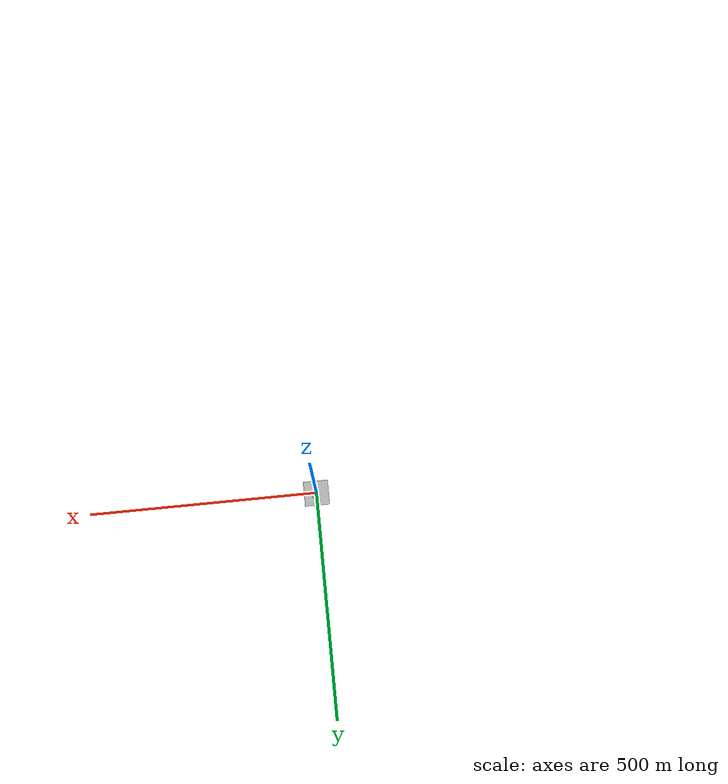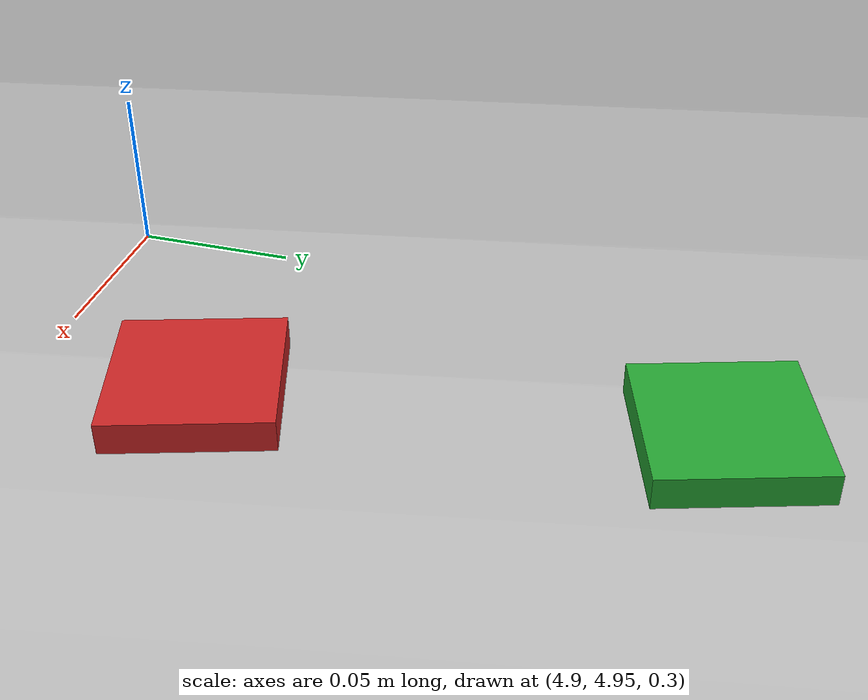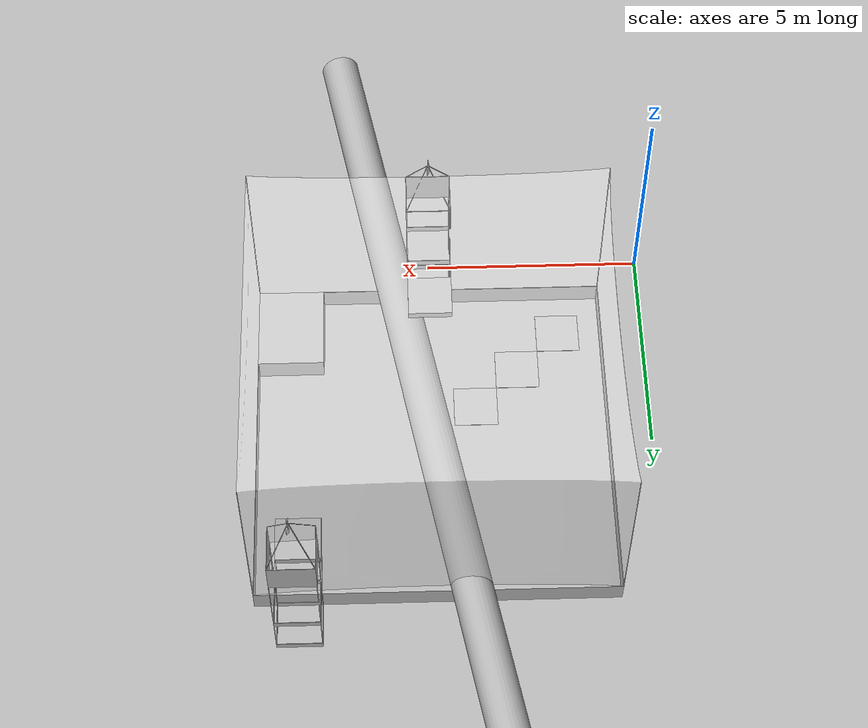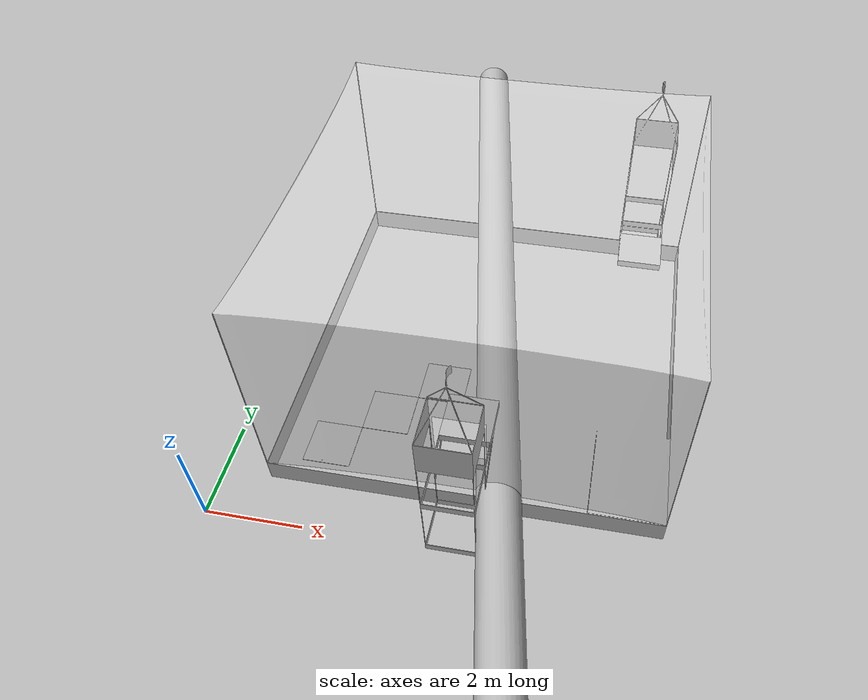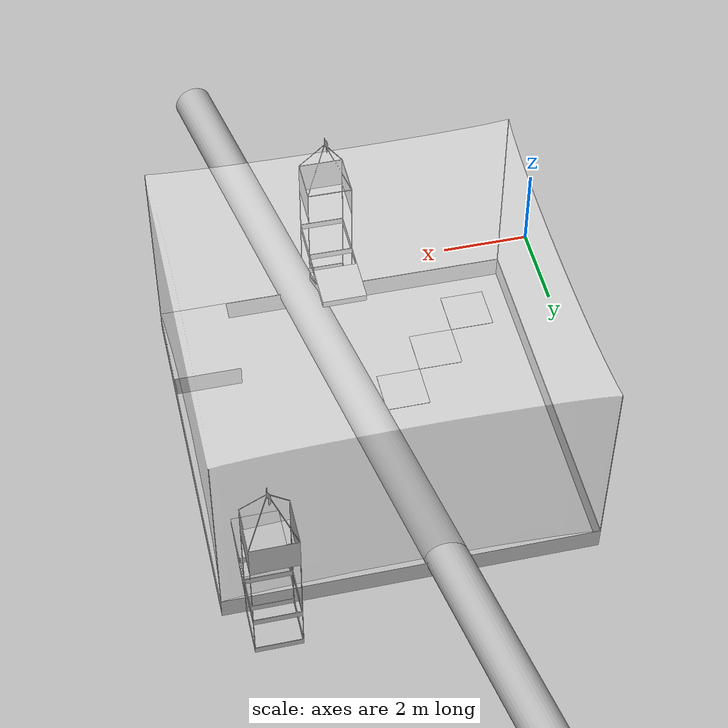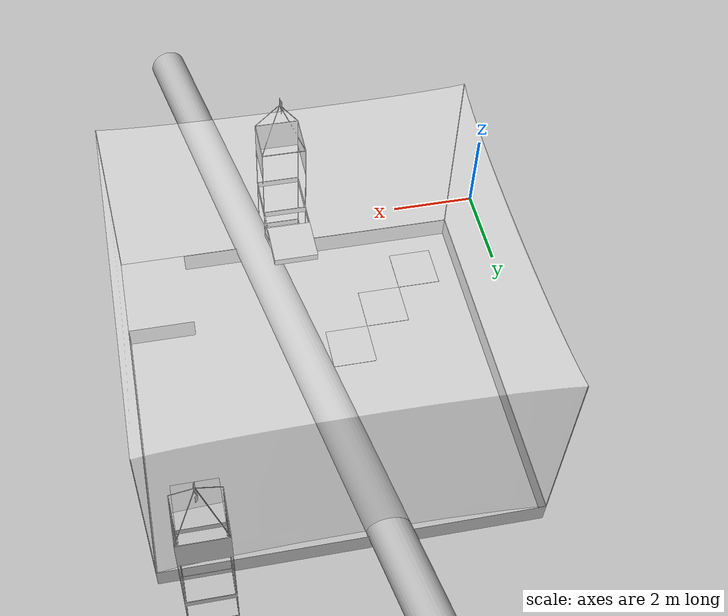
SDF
<?xml version="1.0" ?>
<?xml-model href="http://sdformat.org/schemas/root.xsd" schematypens="http://www.w3.org/2001/XMLSchema"?>
<sdf version="1.5">
  <world name="default">
    <plugin name="mrs_gazebo_static_transform_republisher_plugin" filename="libMRSGazeboStaticTransformRepublisher.so"/>

    <!-- coordinate system {-->
    <spherical_coordinates>
      <surface_model>EARTH_WGS84</surface_model>
      <latitude_deg>37.411802</latitude_deg>
      <longitude_deg>-121.995739</longitude_deg>
      <elevation>0.0</elevation>
      <heading_deg>0</heading_deg>
    </spherical_coordinates>

    <!-- physics engine {-->
    <physics name="default_physics" default="0" type="ode">
      <gravity>0 0 -9.8066</gravity>
      <ode>
        <solver>
          <type>quick</type>
          <iters>10</iters>
          <sor>1.3</sor>
          <use_dynamic_moi_rescaling>0</use_dynamic_moi_rescaling>
        </solver>
        <constraints>z
          <cfm>0</cfm>
          <erp>0.2</erp>
          <contact_max_correcting_vel>1000</contact_max_correcting_vel>
          <contact_surface_layer>0.001</contact_surface_layer>
        </constraints>
      </ode>
      <max_step_size>0.004</max_step_size>
      <real_time_factor>1</real_time_factor>
      <real_time_update_rate>250</real_time_update_rate>
      <magnetic_field>6.0e-06 2.3e-05 -4.2e-05</magnetic_field>
    </physics>

    <!-- turn off shadows {-->
    <scene>
      <shadows>false</shadows>
      <sky>
        <clouds/>
      </sky>
    </scene>

    <!-- sun {-->
    <light type="directional" name="sun">
      <cast_shadows>true</cast_shadows>
      <pose>250 250 600 0 0 0</pose>
      <diffuse>0.8 0.8 0.8 1</diffuse>
      <specular>0.2 0.2 0.2 1</specular>
      <attenuation>
        <range>1000</range>
        <constant>0.9</constant>
        <linear>0.01</linear>
        <quadratic>0.001</quadratic>
      </attenuation>
      <direction>0 0 -1</direction>
    </light>

    <!-- ground plane {-->
    <model name="ground_plane">
      <static>true</static>
      <link name="link">
        <collision name="collision">
          <pose>0 0 0 0 0 0</pose>
          <geometry>
            <plane>
              <normal>0 0 1</normal>
              <size>250 250</size>
            </plane>
          </geometry>
          <surface>
            <friction>
              <ode>
                <mu>1</mu>
                <mu2>1</mu2>
              </ode>
            </friction>
          </surface>
        </collision>
        <visual name="grass">
          <pose>0 0 0 0 0 0</pose>
          <cast_shadows>false</cast_shadows>
          <geometry>
            <mesh>
              <uri>file://grass_plane/meshes/grass_plane.dae</uri>
            </mesh>
          </geometry>
        </visual>
      </link>
    </model>

    <!-- THE ARENA MODEL -->
      <include>
        <uri>model://arena_spawn</uri>
        <!-- Pose ( x y z r p y ) -->
        <pose frame=''>1 1 0.0005 0 -0 0</pose>
      </include>

    <!-- THE LAND BASE MODEL 1 -->
    <model name="land_base_1">
      <include>
        <uri>model://land_base</uri>
        <!-- Pose ( x y z r p y ) -->
        <pose frame=''>2 2 0.012 0 -0 0</pose>
      </include>
    </model>

    <!-- THE LAND BASE MODEL 2 -->
    <model name="land_base_2">
        <include>
          <uri>model://land_base</uri>
            <!-- Pose ( x y z r p y ) -->
          <pose frame=''>3 3 0.012 0 -0 0</pose>
        </include>
    </model>

      <!-- THE LAND BASE MODEL 3 -->
    <model name="land_base_3">
      <include>
        <uri>model://land_base</uri>
          <!-- Pose ( x y z r p y ) -->
        <pose frame=''>4 4 0.012 0 -0 0</pose>
      </include>
    </model>

    <!-- THE PIPE MODEL -->
    <model name="pipe">
      <include>
        <uri>model://pipe</uri>
          <!-- Pose ( x y z r p y ) -->
        <pose frame=''>5 5 0.0005 0 -0 0</pose>
      </include>
    </model>

<!-- REMEMBER!!! IN THE CHALLENGE WIIL BE JUST 5 OF ALL SENSORS -->
    <!-- THE SENSOR GREEN 1 MODEL -->
    <model name="sensor_green_1">
      <include>
        <uri>model://sensor_green</uri>
          <!-- Pose ( x y z r p y ) -->
        <pose frame=''>4.95 5.15 0.3 0 -0 0</pose>
      </include>
    </model>

    <!-- THE SENSOR GREEN 2 MODEL -->
    <model name="sensor_green_2">
      <include>
        <uri>model://sensor_green</uri>
          <!-- Pose ( x y z r p y ) -->
        <pose frame=''>5.1 4.4 0.3 0 -0 0</pose>
      </include>
    </model>

    <!-- THE SENSOR GREEN 3 MODEL -->
    <model name="sensor_green_3">
      <include>
        <uri>model://sensor_green</uri>
          <!-- Pose ( x y z r p y ) -->
        <pose frame=''>5.15 4.15 0.3 0 -0 0</pose>
      </include>
    </model>

    <!-- THE SENSOR GREEN 4 MODEL -->
    <model name="sensor_green_4">
      <include>
        <uri>model://sensor_green</uri>
          <!-- Pose ( x y z r p y ) -->
        <pose frame=''>5.17 3.90 0.3 0 -0 0</pose>
      </include>
    </model>

    <!-- THE SENSOR GREEN 5 MODEL -->
    <model name="sensor_green_5">
      <include>
        <uri>model://sensor_green</uri>
          <!-- Pose ( x y z r p y ) -->
        <pose frame=''>5.0 4.6 0.3 0 -0 0</pose>
      </include>
    </model>

    <!-- THE SENSOR RED 1 MODEL -->
    <model name="sensor_red_1">
      <include>
        <uri>model://sensor_red</uri>
          <!-- Pose ( x y z r p y ) -->
        <pose frame=''>5.32 3.26 0.3 0 -0 0</pose>
      </include>
    </model>

    <!-- THE SENSOR RED 2 MODEL -->
    <model name="sensor_red_2">
      <include>
        <uri>model://sensor_red</uri>
          <!-- Pose ( x y z r p y ) -->
        <pose frame=''>4.97 5 0.3 0 -0 0</pose>
      </include>
    </model>

    <!-- THE SENSOR RED 3 MODEL -->
    <model name="sensor_red_3">
      <include>
        <uri>model://sensor_red</uri>
          <!-- Pose ( x y z r p y ) -->
        <pose frame=''>4.9 5 45.3 0 -0 0</pose>
      </include>
    </model>

    <!-- THE SENSOR RED 4 MODEL -->
    <model name="sensor_red_4">
      <include>
        <uri>model://sensor_red</uri>
          <!-- Pose ( x y z r p y ) -->
        <pose frame=''>4.8 6 0.3 0 -0 0</pose>
      </include>
    </model>

    <!-- THE SENSOR RED 5 MODEL -->
    <model name="sensor_red_5">
      <include>
        <uri>model://sensor_red</uri>
          <!-- Pose ( x y z r p y ) -->
        <pose frame=''>4.6 7.15 0.3 0 -0 0</pose>
      </include>
    </model>

    <!-- THE VOID (for spawning objects out of camera view) {-->
    <model name='the_void'>
      <static>1</static>
      <link name='link'>
        <pose frame=''>0 0 0.1 0 -0 0</pose>
        <visual name='the_void'>
          <pose frame=''>0 0 2 0 -0 0</pose>
          <geometry>
            <sphere>
              <radius>0.25</radius>
            </sphere>
          </geometry>
          <material>
            <script>
              <uri>file://media/materials/scripts/Gazebo.material</uri>
              <name>Gazebo/Black</name>
            </script>
          </material>
        </visual>
        <self_collide>0</self_collide>
        <enable_wind>0</enable_wind>
        <kinematic>0</kinematic>
      </link>
      <pose frame=''>-1000 -1000 0 0 0 0</pose>
    </model>

    <!-- user camera {-->
    <gui>
      <camera name="camera">
        <pose>-60 -100 30 0 0.4 0.89</pose>
      </camera>
    </gui>

    <!-- GUI frame synchronization {-->
    <plugin name="mrs_gazebo_rviz_cam_synchronizer" filename="libMRSGazeboRvizCameraSynchronizer.so" >
      <target_frame_id>gazebo_user_camera</target_frame_id>
      <world_origin_frame_id>uav1/gps_origin</world_origin_frame_id>
      <frame_to_follow>uav1::base_link</frame_to_follow>
    </plugin>

  </world>
</sdf>

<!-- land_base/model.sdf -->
<sdf version='1.6'>
  <model name='land_base'>
    <link name='link_E'>
      <inertial>
        <mass>1</mass>
        <inertia>
          <ixx>0.166667</ixx>
          <ixy>0</ixy>
          <ixz>0</ixz>
          <iyy>0.166667</iyy>
          <iyz>0</iyz>
          <izz>0.166667</izz>
        </inertia>
      </inertial>
      <pose frame=''>0 0 0 0 -0 0</pose>
      <visual name='visual'>
        <pose frame=''>0 0 0 0 -0 0</pose>
        <geometry>
          <mesh>
            <uri>model://land_base/meshes/land_base_1.obj</uri>
            <scale>1 1 1</scale>
          </mesh>
        </geometry>
        <transparency>0</transparency>
        <cast_shadows>1</cast_shadows>
      </visual>
      <collision name='collision'>
        <laser_retro>0</laser_retro>
        <max_contacts>100</max_contacts>
        <pose frame=''>0 0 0 0 -0 0</pose>
        <geometry>
          <mesh>
            <uri>model://land_base/meshes/land_base_1.obj</uri>
            <scale>1 1 1</scale>
          </mesh>
        </geometry>
        <surface>
          <friction>
            <ode>
              <mu>100</mu>
              <mu2>100</mu2>
              <fdir1>0 0 0</fdir1>
              <slip1>0</slip1>
              <slip2>0</slip2>
            </ode>
            <torsional>
              <coefficient>1</coefficient>
              <patch_radius>1</patch_radius>
              <surface_radius>1</surface_radius>
              <use_patch_radius>1</use_patch_radius>
              <ode>
                <slip>0</slip>
              </ode>
            </torsional>
          </friction>
          <bounce>
            <restitution_coefficient>1</restitution_coefficient>
            <threshold>1e+06</threshold>
          </bounce>
          <contact>
            <collide_without_contact>0</collide_without_contact>
            <collide_without_contact_bitmask>1</collide_without_contact_bitmask>
            <collide_bitmask>1</collide_bitmask>
            <ode>
              <soft_cfm>0</soft_cfm>
              <soft_erp>0.2</soft_erp>
              <kp>1e+13</kp>
              <kd>1</kd>
              <max_vel>0.01</max_vel>
              <min_depth>0</min_depth>
            </ode>
            <bullet>
              <split_impulse>1</split_impulse>
              <split_impulse_penetration_threshold>-0.01</split_impulse_penetration_threshold>
              <soft_cfm>0</soft_cfm>
              <soft_erp>0.2</soft_erp>
              <kp>1e+13</kp>
              <kd>1</kd>
            </bullet>
          </contact>
        </surface>
      </collision>
    </link>
    <static>1</static>
    <allow_auto_disable>1</allow_auto_disable>
  </model>
</sdf>

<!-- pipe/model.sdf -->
<sdf version='1.6'>
  <model name='pipe'>
    <link name='link_0'>
      <inertial>
        <mass>1</mass>
        <inertia>
          <ixx>0.166667</ixx>
          <ixy>0</ixy>
          <ixz>0</ixz>
          <iyy>0.166667</iyy>
          <iyz>0</iyz>
          <izz>0.166667</izz>
        </inertia>
      </inertial>
      <pose frame=''>0 0 0 0 -0 0</pose>
      <visual name='visual'>
        <pose frame=''>0 0 0 0 -0 0</pose>
        <geometry>
          <mesh>
            <uri>model://competition/pipe/meshes/pipe.obj</uri>
            <scale>3 3 3</scale>
          </mesh>
        </geometry>
        <transparency>0</transparency>
        <cast_shadows>1</cast_shadows>
      </visual>
      <collision name='collision'>
        <laser_retro>0</laser_retro>
        <max_contacts>10</max_contacts>
        <pose frame=''>0 0 0 0 -0 0</pose>
        <geometry>
          <mesh>
            <uri>model://competition/pipe/meshes/pipe.obj</uri>
            <scale>3 3 3</scale>
          </mesh>
        </geometry>
        <surface>
          <friction>
            <ode>
              <mu>1</mu>
              <mu2>1</mu2>
              <fdir1>0 0 0</fdir1>
              <slip1>0</slip1>
              <slip2>0</slip2>
            </ode>
            <torsional>
              <coefficient>1</coefficient>
              <patch_radius>0</patch_radius>
              <surface_radius>0</surface_radius>
              <use_patch_radius>1</use_patch_radius>
              <ode>
                <slip>0</slip>
              </ode>
            </torsional>
          </friction>
          <bounce>
            <restitution_coefficient>0</restitution_coefficient>
            <threshold>1e+06</threshold>
          </bounce>
          <contact>
            <collide_without_contact>0</collide_without_contact>
            <collide_without_contact_bitmask>1</collide_without_contact_bitmask>
            <collide_bitmask>1</collide_bitmask>
            <ode>
              <soft_cfm>0</soft_cfm>
              <soft_erp>0.2</soft_erp>
              <kp>1e+13</kp>
              <kd>1</kd>
              <max_vel>0.01</max_vel>
              <min_depth>0</min_depth>
            </ode>
            <bullet>
              <split_impulse>1</split_impulse>
              <split_impulse_penetration_threshold>-0.01</split_impulse_penetration_threshold>
              <soft_cfm>0</soft_cfm>
              <soft_erp>0.2</soft_erp>
              <kp>1e+13</kp>
              <kd>1</kd>
            </bullet>
          </contact>
        </surface>
      </collision>
    </link>
    <static>1</static>
    <allow_auto_disable>1</allow_auto_disable>
  </model>
</sdf>

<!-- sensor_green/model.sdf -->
<sdf version='1.6'>
  <model name='sensor_green'>
    <link name='link_4'>
      <inertial>
        <mass>1</mass>
        <inertia>
          <ixx>0.166667</ixx>
          <ixy>0</ixy>
          <ixz>0</ixz>
          <iyy>0.166667</iyy>
          <iyz>0</iyz>
          <izz>0.166667</izz>
        </inertia>
      </inertial>
      <pose frame=''>0 0 0 0 -0 0</pose>
      <visual name='visual'>
        <pose frame=''>0 0 0 0 -0 0</pose>
        <geometry>
          <mesh>
            <uri>model://sensor_green/meshes/sensor_green.obj</uri>
            <scale>1 1 1</scale>
          </mesh>
        </geometry>
        <material>
          <lighting>1</lighting>
          <script>
            <uri>file://media/materials/scripts/gazebo.material</uri>
            <name>Gazebo/Green</name>
          </script>
          <shader type='pixel'/>
        </material>
        <transparency>0</transparency>
        <cast_shadows>1</cast_shadows>
      </visual>
      <collision name='collision'>
        <laser_retro>0</laser_retro>
        <max_contacts>10</max_contacts>
        <pose frame=''>0 0 0 0 -0 0</pose>
        <geometry>
          <mesh>
            <uri>model://sensor_green/meshes/sensor_green.obj</uri>
            <scale>1 1 1</scale>
          </mesh>
        </geometry>
        <surface>
          <friction>
            <ode>
              <mu>1</mu>
              <mu2>1</mu2>
              <fdir1>0 0 0</fdir1>
              <slip1>0</slip1>
              <slip2>0</slip2>
            </ode>
            <torsional>
              <coefficient>1</coefficient>
              <patch_radius>0</patch_radius>
              <surface_radius>0</surface_radius>
              <use_patch_radius>1</use_patch_radius>
              <ode>
                <slip>0</slip>
              </ode>
            </torsional>
          </friction>
          <bounce>
            <restitution_coefficient>0</restitution_coefficient>
            <threshold>1e+06</threshold>
          </bounce>
          <contact>
            <collide_without_contact>0</collide_without_contact>
            <collide_without_contact_bitmask>1</collide_without_contact_bitmask>
            <collide_bitmask>1</collide_bitmask>
            <ode>
              <soft_cfm>0</soft_cfm>
              <soft_erp>0.2</soft_erp>
              <kp>1e+13</kp>
              <kd>1</kd>
              <max_vel>0.01</max_vel>
              <min_depth>0</min_depth>
            </ode>
            <bullet>
              <split_impulse>1</split_impulse>
              <split_impulse_penetration_threshold>-0.01</split_impulse_penetration_threshold>
              <soft_cfm>0</soft_cfm>
              <soft_erp>0.2</soft_erp>
              <kp>1e+13</kp>
              <kd>1</kd>
            </bullet>
          </contact>
        </surface>
      </collision>
    </link>
    <static>1</static>
    <allow_auto_disable>1</allow_auto_disable>
  </model>
</sdf>

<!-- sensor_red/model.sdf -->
<sdf version='1.6'>
  <model name='sensor_red'>
    <link name='link_5'>
      <inertial>
        <mass>1</mass>
        <inertia>
          <ixx>0.166667</ixx>
          <ixy>0</ixy>
          <ixz>0</ixz>
          <iyy>0.166667</iyy>
          <iyz>0</iyz>
          <izz>0.166667</izz>
        </inertia>
      </inertial>
      <pose frame=''>0 0 0 0 -0 0</pose>
      <visual name='visual'>
        <pose frame=''>0 0 0 0 -0 0</pose>
        <geometry>
          <mesh>
            <uri>model://sensor_red/meshes/sensor_red.obj</uri>
            <scale>1 1 1</scale>
          </mesh>
        </geometry>
        <material>
          <lighting>1</lighting>
          <script>
            <uri>file://media/materials/scripts/gazebo.material</uri>
            <name>Gazebo/Red</name>
          </script>
          <shader type='pixel'/>
        </material>
        <transparency>0</transparency>
        <cast_shadows>1</cast_shadows>
      </visual>
      <collision name='collision'>
        <laser_retro>0</laser_retro>
        <max_contacts>10</max_contacts>
        <pose frame=''>0 0 0 0 -0 0</pose>
        <geometry>
          <mesh>
            <uri>model://sensor_red/meshes/sensor_red.obj</uri>
            <scale>1 1 1</scale>
          </mesh>
        </geometry>
        <surface>
          <friction>
            <ode>
              <mu>1</mu>
              <mu2>1</mu2>
              <fdir1>0 0 0</fdir1>
              <slip1>0</slip1>
              <slip2>0</slip2>
            </ode>
            <torsional>
              <coefficient>1</coefficient>
              <patch_radius>0</patch_radius>
              <surface_radius>0</surface_radius>
              <use_patch_radius>1</use_patch_radius>
              <ode>
                <slip>0</slip>
              </ode>
            </torsional>
          </friction>
          <bounce>
            <restitution_coefficient>0</restitution_coefficient>
            <threshold>1e+06</threshold>
          </bounce>
          <contact>
            <collide_without_contact>0</collide_without_contact>
            <collide_without_contact_bitmask>1</collide_without_contact_bitmask>
            <collide_bitmask>1</collide_bitmask>
            <ode>
              <soft_cfm>0</soft_cfm>
              <soft_erp>0.2</soft_erp>
              <kp>1e+13</kp>
              <kd>1</kd>
              <max_vel>0.01</max_vel>
              <min_depth>0</min_depth>
            </ode>
            <bullet>
              <split_impulse>1</split_impulse>
              <split_impulse_penetration_threshold>-0.01</split_impulse_penetration_threshold>
              <soft_cfm>0</soft_cfm>
              <soft_erp>0.2</soft_erp>
              <kp>1e+13</kp>
              <kd>1</kd>
            </bullet>
          </contact>
        </surface>
      </collision>
    </link>
    <static>1</static>
    <allow_auto_disable>1</allow_auto_disable>
  </model>
</sdf>

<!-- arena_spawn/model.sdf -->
<sdf version='1.6'>
  <model name='arena_spawn'>
    <link name='link_0'>
      <inertial>
        <mass>1</mass>
        <inertia>
          <ixx>0.166667</ixx>
          <ixy>0</ixy>
          <ixz>0</ixz>
          <iyy>0.166667</iyy>
          <iyz>0</iyz>
          <izz>0.166667</izz>
        </inertia>
      </inertial>
      <self_collide>0</self_collide>
      <enable_wind>0</enable_wind>
      <kinematic>0</kinematic>
      <pose frame=''>0 0 0 0 -0 0</pose>
      <visual name='visual'>
        <pose frame=''>0 0 0 0 -0 0</pose>
        <geometry>
          <mesh>
            <uri>model://arena_spawn/meshes/net.obj</uri>
            <scale>1 1 1</scale>
          </mesh>
        </geometry>
        <material>
          <lighting>1</lighting>
          <script>
            <uri>file://media/materials/scripts/gazebo.material</uri>
            <name>Gazebo/white</name>
          </script>
          <shader type='pixel'>
            <normal_map>__default__</normal_map>
          </shader>
          <ambient>0.3 0.3 0.3 1</ambient>
          <diffuse>0.7 0.7 0.7 1</diffuse>
          <specular>0.01 0.01 0.01 1</specular>
          <emissive>0 0 0 1</emissive>
        </material>
        <transparency>0.5</transparency>
        <cast_shadows>1</cast_shadows>
      </visual>
      <collision name='collision'>
        <laser_retro>0</laser_retro>
        <max_contacts>10</max_contacts>
        <pose frame=''>0 0 0 0 -0 0</pose>
        <geometry>
          <mesh>
            <uri>model://arena_spawn/meshes/net.obj</uri>
            <scale>1 1 1</scale>
          </mesh>
        </geometry>
        <surface>
          <friction>
            <ode>
              <mu>1</mu>
              <mu2>1</mu2>
              <fdir1>0 0 0</fdir1>
              <slip1>0</slip1>
              <slip2>0</slip2>
            </ode>
            <torsional>
              <coefficient>1</coefficient>
              <patch_radius>100</patch_radius>
              <surface_radius>100</surface_radius>
              <use_patch_radius>1</use_patch_radius>
              <ode>
                <slip>0</slip>
              </ode>
            </torsional>
          </friction>
          <bounce>
            <restitution_coefficient>0</restitution_coefficient>
            <threshold>1e+06</threshold>
          </bounce>
          <contact>
            <collide_without_contact>0</collide_without_contact>
            <collide_without_contact_bitmask>1</collide_without_contact_bitmask>
            <collide_bitmask>1</collide_bitmask>
            <ode>
              <soft_cfm>0</soft_cfm>
              <soft_erp>0.2</soft_erp>
              <kp>1e+13</kp>
              <kd>1</kd>
              <max_vel>0.01</max_vel>
              <min_depth>0</min_depth>
            </ode>
            <bullet>
              <split_impulse>1</split_impulse>
              <split_impulse_penetration_threshold>-0.01</split_impulse_penetration_threshold>
              <soft_cfm>0</soft_cfm>
              <soft_erp>0.2</soft_erp>
              <kp>1e+13</kp>
              <kd>1</kd>
            </bullet>
          </contact>
        </surface>
      </collision>
    </link>
    <model name='arena_spawn'>
      <link name='link_0'>
        <inertial>
          <mass>15</mass>
          <inertia>
            <ixx>1</ixx>
            <ixy>1</ixy>
            <ixz>1</ixz>
            <iyy>1</iyy>
            <iyz>1</iyz>
            <izz>1</izz>
          </inertia>
        </inertial>
        <self_collide>1</self_collide>
        <enable_wind>0</enable_wind>
        <kinematic>0</kinematic>
        <pose frame=''>0 0 0 0 -0 0</pose>
        <visual name='visual'>
          <pose frame=''>0 0 0 0 -0 0</pose>
          <geometry>
            <mesh>
              <uri>model://arena_spawn/meshes/Arena.obj</uri>
              <scale>1 1 1</scale>
            </mesh>
          </geometry>
          <transparency>0</transparency>
          <cast_shadows>1</cast_shadows>
        </visual>
        <collision name='collision'>
          <laser_retro>0</laser_retro>
          <max_contacts>10</max_contacts>
          <pose frame=''>0 0 0 0 -0 0</pose>
          <geometry>
            <mesh>
              <uri>model://arena_spawn/meshes/Arena.obj</uri>
              <scale>1 1 1</scale>
            </mesh>
          </geometry>
          <surface>
            <friction>
              <ode>
                <mu>1</mu>
                <mu2>1</mu2>
                <fdir1>0 0 0</fdir1>
                <slip1>0</slip1>
                <slip2>0</slip2>
              </ode>
              <torsional>
                <coefficient>1</coefficient>
                <patch_radius>100</patch_radius>
                <surface_radius>100</surface_radius>
                <use_patch_radius>1</use_patch_radius>
                <ode>
                  <slip>0</slip>
                </ode>
              </torsional>
            </friction>
            <bounce>
              <restitution_coefficient>0</restitution_coefficient>
              <threshold>1e+06</threshold>
            </bounce>
            <contact>
              <collide_without_contact>0</collide_without_contact>
              <collide_without_contact_bitmask>1</collide_without_contact_bitmask>
              <collide_bitmask>1</collide_bitmask>
              <ode>
                <soft_cfm>0</soft_cfm>
                <soft_erp>0.2</soft_erp>
                <kp>1e+13</kp>
                <kd>1</kd>
                <max_vel>0.01</max_vel>
                <min_depth>0</min_depth>
              </ode>
              <bullet>
                <split_impulse>1</split_impulse>
                <split_impulse_penetration_threshold>-0.01</split_impulse_penetration_threshold>
                <soft_cfm>0</soft_cfm>
                <soft_erp>0.2</soft_erp>
                <kp>1e+13</kp>
                <kd>1</kd>
              </bullet>
            </contact>
          </surface>
        </collision>
      </link>
      <link name='link_4'>
        <inertial>
          <mass>1</mass>
          <inertia>
            <ixx>0.166667</ixx>
            <ixy>0</ixy>
            <ixz>0</ixz>
            <iyy>0.166667</iyy>
            <iyz>0</iyz>
            <izz>0.166667</izz>
          </inertia>
        </inertial>
        <self_collide>1</self_collide>
        <enable_wind>0</enable_wind>
        <kinematic>0</kinematic>
        <pose frame=''>0 0 0 0 -0 0</pose>
        <visual name='visual'>
          <pose frame=''>0 0 0 0 -0 0</pose>
          <geometry>
            <mesh>
              <uri>model://arena_spawn/meshes/high_base_left.obj</uri>
              <scale>1 1 1</scale>
            </mesh>
          </geometry>
          <transparency>0</transparency>
          <cast_shadows>1</cast_shadows>
        </visual>
        <collision name='collision'>
          <laser_retro>0</laser_retro>
          <max_contacts>10</max_contacts>
          <pose frame=''>0 0 0 0 -0 0</pose>
          <geometry>
            <mesh>
              <uri>model://arena_spawn/meshes/high_base_left.obj</uri>
              <scale>1 1 1</scale>
            </mesh>
          </geometry>
          <surface>
            <friction>
              <ode>
                <mu>1</mu>
                <mu2>1</mu2>
                <fdir1>0 0 0</fdir1>
                <slip1>0</slip1>
                <slip2>0</slip2>
              </ode>
              <torsional>
                <coefficient>1</coefficient>
                <patch_radius>100</patch_radius>
                <surface_radius>100</surface_radius>
                <use_patch_radius>1</use_patch_radius>
                <ode>
                  <slip>0</slip>
                </ode>
              </torsional>
            </friction>
            <bounce>
              <restitution_coefficient>0</restitution_coefficient>
              <threshold>1e+06</threshold>
            </bounce>
            <contact>
              <collide_without_contact>0</collide_without_contact>
              <collide_without_contact_bitmask>1</collide_without_contact_bitmask>
              <collide_bitmask>1</collide_bitmask>
              <ode>
                <soft_cfm>0</soft_cfm>
                <soft_erp>0.2</soft_erp>
                <kp>1e+13</kp>
                <kd>1</kd>
                <max_vel>0.01</max_vel>
                <min_depth>0</min_depth>
              </ode>
              <bullet>
                <split_impulse>1</split_impulse>
                <split_impulse_penetration_threshold>-0.01</split_impulse_penetration_threshold>
                <soft_cfm>0</soft_cfm>
                <soft_erp>0.2</soft_erp>
                <kp>1e+13</kp>
                <kd>1</kd>
              </bullet>
            </contact>
          </surface>
        </collision>
      </link>
      <link name='link_5'>
        <inertial>
          <mass>1</mass>
          <inertia>
            <ixx>0.166667</ixx>
            <ixy>0</ixy>
            <ixz>0</ixz>
            <iyy>0.166667</iyy>
            <iyz>0</iyz>
            <izz>0.166667</izz>
          </inertia>
        </inertial>
        <self_collide>1</self_collide>
        <enable_wind>0</enable_wind>
        <kinematic>0</kinematic>
        <pose frame=''>0 0 0 0 -0 0</pose>
        <visual name='visual'>
          <pose frame=''>0 0 0 0 -0 0</pose>
          <geometry>
            <mesh>
              <uri>model://arena_spawn/meshes/high_base_right.obj</uri>
              <scale>1 1 1</scale>
            </mesh>
          </geometry>
          <transparency>0</transparency>
          <cast_shadows>1</cast_shadows>
        </visual>
        <collision name='collision'>
          <laser_retro>0</laser_retro>
          <max_contacts>10</max_contacts>
          <pose frame=''>0 0 0 0 -0 0</pose>
          <geometry>
            <mesh>
              <uri>model://arena_spawn/meshes/high_base_right.obj</uri>
              <scale>1 1 1</scale>
            </mesh>
          </geometry>
          <surface>
            <friction>
              <ode>
                <mu>1</mu>
                <mu2>1</mu2>
                <fdir1>0 0 0</fdir1>
                <slip1>0</slip1>
                <slip2>0</slip2>
              </ode>
              <torsional>
                <coefficient>1</coefficient>
                <patch_radius>100</patch_radius>
                <surface_radius>100</surface_radius>
                <use_patch_radius>1</use_patch_radius>
                <ode>
                  <slip>0</slip>
                </ode>
              </torsional>
            </friction>
            <bounce>
              <restitution_coefficient>0</restitution_coefficient>
              <threshold>1e+06</threshold>
            </bounce>
            <contact>
              <collide_without_contact>0</collide_without_contact>
              <collide_without_contact_bitmask>1</collide_without_contact_bitmask>
              <collide_bitmask>1</collide_bitmask>
              <ode>
                <soft_cfm>0</soft_cfm>
                <soft_erp>0.2</soft_erp>
                <kp>1e+13</kp>
                <kd>1</kd>
                <max_vel>0.01</max_vel>
                <min_depth>0</min_depth>
              </ode>
              <bullet>
                <split_impulse>1</split_impulse>
                <split_impulse_penetration_threshold>-0.01</split_impulse_penetration_threshold>
                <soft_cfm>0</soft_cfm>
                <soft_erp>0.2</soft_erp>
                <kp>1e+13</kp>
                <kd>1</kd>
              </bullet>
            </contact>
          </surface>
        </collision>
      </link>
      <static>1</static>
      <pose frame=''>0 0 0.0005 0 -0 0</pose>
    </model>
    <static>1</static>
  </model>
</sdf>
